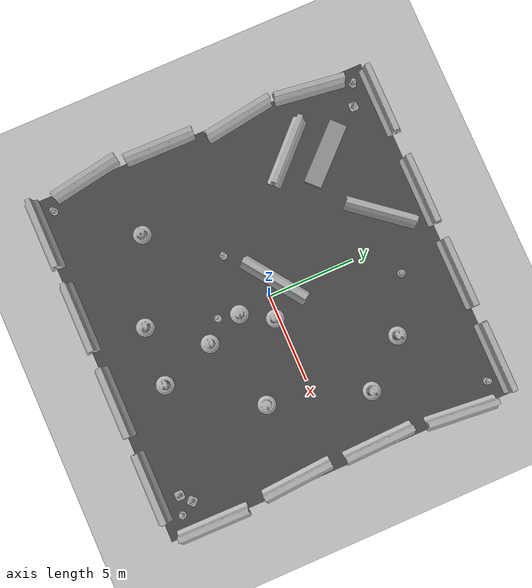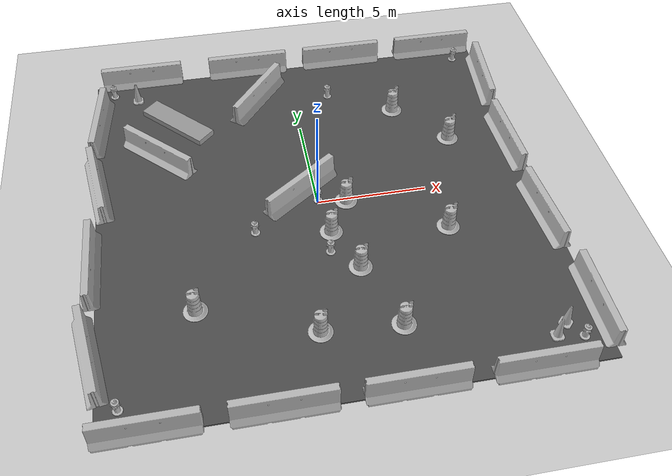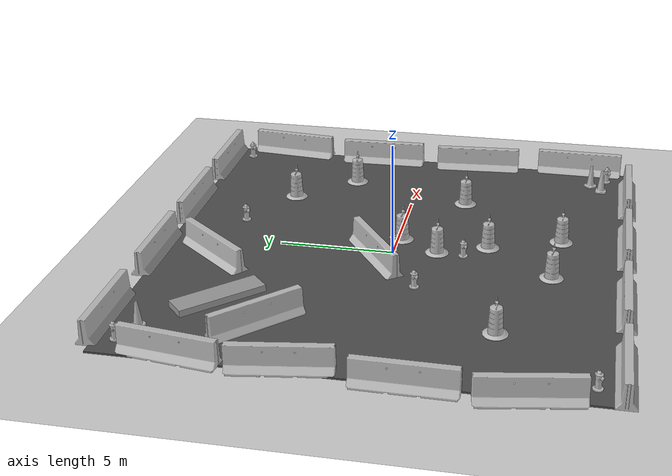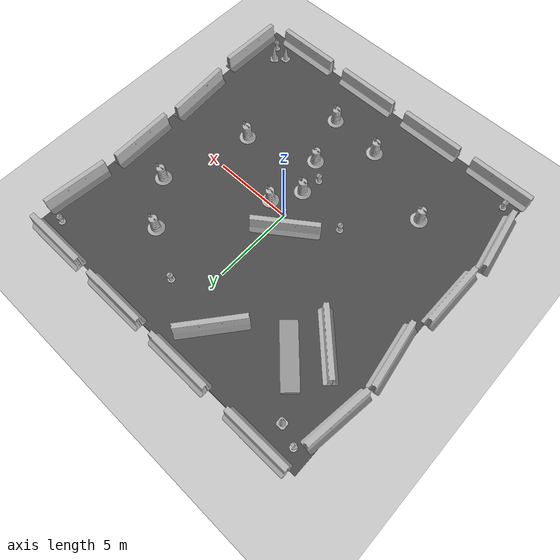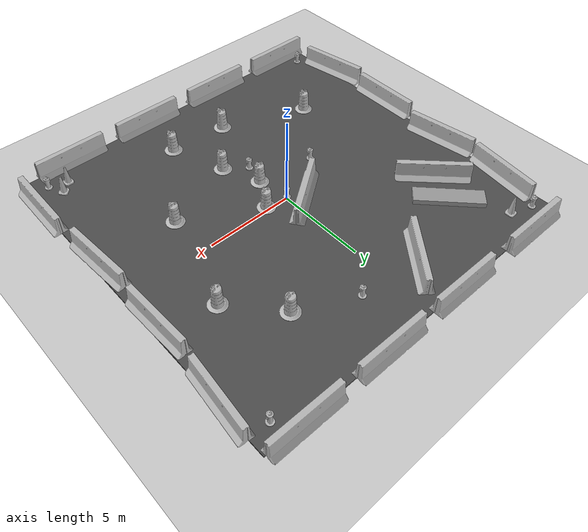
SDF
<sdf version="1.7">
 <world name="default">
  <light name="sun" type="directional">
   <pose>0 0 10 0 -0 0</pose>
   <diffuse>0.8 0.8 0.8 1</diffuse>
   <specular>0.2 0.2 0.2 1</specular>
   <attenuation>
    <range>1000</range>
    <constant>0.9</constant>
    <linear>0.01</linear>
    <quadratic>0.001</quadratic>
   </attenuation>
   <direction>-0.5 0.1 -0.9</direction>
   <spot><inner_angle>0</inner_angle><outer_angle>0</outer_angle><falloff>0</falloff></spot>
  </light>
  <model name="ground_plane">
   <static>1</static>
   <link name="link">
    <collision name="collision">
     <geometry><plane><normal>0 0 1</normal><size>100 100</size></plane></geometry>
     <surface><friction><ode><mu>100</mu><mu2>50</mu2></ode></friction></surface>
    </collision>
    <visual name="visual">
     <cast_shadows>0</cast_shadows>
     <geometry><plane><normal>0 0 1</normal><size>100 100</size></plane></geometry>
     <material>
      <script><uri>file://media/materials/scripts/gazebo.material</uri><name>Gazebo/Grey</name></script>
     </material>
    </visual>
    <velocity_decay><linear>0</linear><angular>0</angular></velocity_decay>
   </link>
  </model>
  <physics type="ode">
   <max_step_size>0.01</max_step_size>
   <real_time_factor>1</real_time_factor>
   <real_time_update_rate>100</real_time_update_rate>
  </physics>
  <scene><ambient>0.4 0.4 0.4 1</ambient><background>0.7 0.7 0.7 1</background><shadows>1</shadows></scene>
  <model name="jersey_barrier">
   <static>1</static>
   <link name="link">
    <visual name="visual">
     <geometry><mesh><uri>model://jersey_barrier/meshes/jersey_barrier.dae</uri></mesh></geometry>
    </visual>
    <collision name="upright">
     <pose>0 0 0.5715 0 -0 0</pose>
     <geometry><box><size>4.06542 0.3063 1.143</size></box></geometry>
    </collision>
    <collision name="base">
     <pose>0 0 0.032258 0 -0 0</pose>
     <geometry><box><size>4.06542 0.8107 0.064516</size></box></geometry>
    </collision>
    <collision name="base2">
     <pose>0 0 0.1 0 -0 0</pose>
     <geometry><box><size>4.06542 0.65 0.1</size></box></geometry>
    </collision>
    <collision name="base3">
     <pose>0 0 0.2 0 -0 0</pose>
     <geometry><box><size>4.06542 0.5 0.1</size></box></geometry>
    </collision>
    <collision name="left-angle">
     <pose>0 -0.224 0.2401 0.9 -0 0</pose>
     <geometry><box><size>4.06542 0.5 0.064516</size></box></geometry>
    </collision>
    <collision name="right-angle">
     <pose>0 0.224 0.2401 -0.9 0 0</pose>
     <geometry><box><size>4.06542 0.5 0.064516</size></box></geometry>
    </collision>
    <velocity_decay><linear>0</linear><angular>0</angular></velocity_decay>
   </link>
   <pose>-8 -10 0 0 -0 0</pose>
  </model>
  <model name="jersey_barrier_0">
   <static>1</static>
   <link name="link">
    <visual name="visual">
     <geometry><mesh><uri>model://jersey_barrier/meshes/jersey_barrier.dae</uri></mesh></geometry>
    </visual>
    <collision name="upright">
     <pose>0 0 0.5715 0 -0 0</pose>
     <geometry><box><size>4.06542 0.3063 1.143</size></box></geometry>
    </collision>
    <collision name="base">
     <pose>0 0 0.032258 0 -0 0</pose>
     <geometry><box><size>4.06542 0.8107 0.064516</size></box></geometry>
    </collision>
    <collision name="base2">
     <pose>0 0 0.1 0 -0 0</pose>
     <geometry><box><size>4.06542 0.65 0.1</size></box></geometry>
    </collision>
    <collision name="base3">
     <pose>0 0 0.2 0 -0 0</pose>
     <geometry><box><size>4.06542 0.5 0.1</size></box></geometry>
    </collision>
    <collision name="left-angle">
     <pose>0 -0.224 0.2401 0.9 -0 0</pose>
     <geometry><box><size>4.06542 0.5 0.064516</size></box></geometry>
    </collision>
    <collision name="right-angle">
     <pose>0 0.224 0.2401 -0.9 0 0</pose>
     <geometry><box><size>4.06542 0.5 0.064516</size></box></geometry>
    </collision>
    <velocity_decay><linear>0</linear><angular>0</angular></velocity_decay>
   </link>
   <pose>-3 -10 0 0 -0 0</pose>
  </model>
  <model name="jersey_barrier_1">
   <static>1</static>
   <link name="link">
    <visual name="visual">
     <geometry><mesh><uri>model://jersey_barrier/meshes/jersey_barrier.dae</uri></mesh></geometry>
    </visual>
    <collision name="upright">
     <pose>0 0 0.5715 0 -0 0</pose>
     <geometry><box><size>4.06542 0.3063 1.143</size></box></geometry>
    </collision>
    <collision name="base">
     <pose>0 0 0.032258 0 -0 0</pose>
     <geometry><box><size>4.06542 0.8107 0.064516</size></box></geometry>
    </collision>
    <collision name="base2">
     <pose>0 0 0.1 0 -0 0</pose>
     <geometry><box><size>4.06542 0.65 0.1</size></box></geometry>
    </collision>
    <collision name="base3">
     <pose>0 0 0.2 0 -0 0</pose>
     <geometry><box><size>4.06542 0.5 0.1</size></box></geometry>
    </collision>
    <collision name="left-angle">
     <pose>0 -0.224 0.2401 0.9 -0 0</pose>
     <geometry><box><size>4.06542 0.5 0.064516</size></box></geometry>
    </collision>
    <collision name="right-angle">
     <pose>0 0.224 0.2401 -0.9 0 0</pose>
     <geometry><box><size>4.06542 0.5 0.064516</size></box></geometry>
    </collision>
    <velocity_decay><linear>0</linear><angular>0</angular></velocity_decay>
   </link>
   <pose>2 -10 0 0 -0 0</pose>
  </model>
  <model name="jersey_barrier_2">
   <static>1</static>
   <link name="link">
    <visual name="visual">
     <geometry><mesh><uri>model://jersey_barrier/meshes/jersey_barrier.dae</uri></mesh></geometry>
    </visual>
    <collision name="upright">
     <pose>0 0 0.5715 0 -0 0</pose>
     <geometry><box><size>4.06542 0.3063 1.143</size></box></geometry>
    </collision>
    <collision name="base">
     <pose>0 0 0.032258 0 -0 0</pose>
     <geometry><box><size>4.06542 0.8107 0.064516</size></box></geometry>
    </collision>
    <collision name="base2">
     <pose>0 0 0.1 0 -0 0</pose>
     <geometry><box><size>4.06542 0.65 0.1</size></box></geometry>
    </collision>
    <collision name="base3">
     <pose>0 0 0.2 0 -0 0</pose>
     <geometry><box><size>4.06542 0.5 0.1</size></box></geometry>
    </collision>
    <collision name="left-angle">
     <pose>0 -0.224 0.2401 0.9 -0 0</pose>
     <geometry><box><size>4.06542 0.5 0.064516</size></box></geometry>
    </collision>
    <collision name="right-angle">
     <pose>0 0.224 0.2401 -0.9 0 0</pose>
     <geometry><box><size>4.06542 0.5 0.064516</size></box></geometry>
    </collision>
    <velocity_decay><linear>0</linear><angular>0</angular></velocity_decay>
   </link>
   <pose>7 -10 0 0 -0 0</pose>
  </model>
  <model name="jersey_barrier_3">
   <static>1</static>
   <link name="link">
    <visual name="visual">
     <geometry><mesh><uri>model://jersey_barrier/meshes/jersey_barrier.dae</uri></mesh></geometry>
    </visual>
    <collision name="upright">
     <pose>0 0 0.5715 0 -0 0</pose>
     <geometry><box><size>4.06542 0.3063 1.143</size></box></geometry>
    </collision>
    <collision name="base">
     <pose>0 0 0.032258 0 -0 0</pose>
     <geometry><box><size>4.06542 0.8107 0.064516</size></box></geometry>
    </collision>
    <collision name="base2">
     <pose>0 0 0.1 0 -0 0</pose>
     <geometry><box><size>4.06542 0.65 0.1</size></box></geometry>
    </collision>
    <collision name="base3">
     <pose>0 0 0.2 0 -0 0</pose>
     <geometry><box><size>4.06542 0.5 0.1</size></box></geometry>
    </collision>
    <collision name="left-angle">
     <pose>0 -0.224 0.2401 0.9 -0 0</pose>
     <geometry><box><size>4.06542 0.5 0.064516</size></box></geometry>
    </collision>
    <collision name="right-angle">
     <pose>0 0.224 0.2401 -0.9 0 0</pose>
     <geometry><box><size>4.06542 0.5 0.064516</size></box></geometry>
    </collision>
    <velocity_decay><linear>0</linear><angular>0</angular></velocity_decay>
   </link>
   <pose>-7.50675 10 0 0 -0 0</pose>
  </model>
  <model name="jersey_barrier_4">
   <static>1</static>
   <link name="link">
    <visual name="visual">
     <geometry><mesh><uri>model://jersey_barrier/meshes/jersey_barrier.dae</uri></mesh></geometry>
    </visual>
    <collision name="upright">
     <pose>0 0 0.5715 0 -0 0</pose>
     <geometry><box><size>4.06542 0.3063 1.143</size></box></geometry>
    </collision>
    <collision name="base">
     <pose>0 0 0.032258 0 -0 0</pose>
     <geometry><box><size>4.06542 0.8107 0.064516</size></box></geometry>
    </collision>
    <collision name="base2">
     <pose>0 0 0.1 0 -0 0</pose>
     <geometry><box><size>4.06542 0.65 0.1</size></box></geometry>
    </collision>
    <collision name="base3">
     <pose>0 0 0.2 0 -0 0</pose>
     <geometry><box><size>4.06542 0.5 0.1</size></box></geometry>
    </collision>
    <collision name="left-angle">
     <pose>0 -0.224 0.2401 0.9 -0 0</pose>
     <geometry><box><size>4.06542 0.5 0.064516</size></box></geometry>
    </collision>
    <collision name="right-angle">
     <pose>0 0.224 0.2401 -0.9 0 0</pose>
     <geometry><box><size>4.06542 0.5 0.064516</size></box></geometry>
    </collision>
    <velocity_decay><linear>0</linear><angular>0</angular></velocity_decay>
   </link>
   <pose>-2 10 0 0 -0 0</pose>
  </model>
  <model name="jersey_barrier_5">
   <static>1</static>
   <link name="link">
    <visual name="visual">
     <geometry><mesh><uri>model://jersey_barrier/meshes/jersey_barrier.dae</uri></mesh></geometry>
    </visual>
    <collision name="upright">
     <pose>0 0 0.5715 0 -0 0</pose>
     <geometry><box><size>4.06542 0.3063 1.143</size></box></geometry>
    </collision>
    <collision name="base">
     <pose>0 0 0.032258 0 -0 0</pose>
     <geometry><box><size>4.06542 0.8107 0.064516</size></box></geometry>
    </collision>
    <collision name="base2">
     <pose>0 0 0.1 0 -0 0</pose>
     <geometry><box><size>4.06542 0.65 0.1</size></box></geometry>
    </collision>
    <collision name="base3">
     <pose>0 0 0.2 0 -0 0</pose>
     <geometry><box><size>4.06542 0.5 0.1</size></box></geometry>
    </collision>
    <collision name="left-angle">
     <pose>0 -0.224 0.2401 0.9 -0 0</pose>
     <geometry><box><size>4.06542 0.5 0.064516</size></box></geometry>
    </collision>
    <collision name="right-angle">
     <pose>0 0.224 0.2401 -0.9 0 0</pose>
     <geometry><box><size>4.06542 0.5 0.064516</size></box></geometry>
    </collision>
    <velocity_decay><linear>0</linear><angular>0</angular></velocity_decay>
   </link>
   <pose>3 10 0 0 -0 0</pose>
  </model>
  <model name="jersey_barrier_6">
   <static>1</static>
   <link name="link">
    <visual name="visual">
     <geometry><mesh><uri>model://jersey_barrier/meshes/jersey_barrier.dae</uri></mesh></geometry>
    </visual>
    <collision name="upright">
     <pose>0 0 0.5715 0 -0 0</pose>
     <geometry><box><size>4.06542 0.3063 1.143</size></box></geometry>
    </collision>
    <collision name="base">
     <pose>0 0 0.032258 0 -0 0</pose>
     <geometry><box><size>4.06542 0.8107 0.064516</size></box></geometry>
    </collision>
    <collision name="base2">
     <pose>0 0 0.1 0 -0 0</pose>
     <geometry><box><size>4.06542 0.65 0.1</size></box></geometry>
    </collision>
    <collision name="base3">
     <pose>0 0 0.2 0 -0 0</pose>
     <geometry><box><size>4.06542 0.5 0.1</size></box></geometry>
    </collision>
    <collision name="left-angle">
     <pose>0 -0.224 0.2401 0.9 -0 0</pose>
     <geometry><box><size>4.06542 0.5 0.064516</size></box></geometry>
    </collision>
    <collision name="right-angle">
     <pose>0 0.224 0.2401 -0.9 0 0</pose>
     <geometry><box><size>4.06542 0.5 0.064516</size></box></geometry>
    </collision>
    <velocity_decay><linear>0</linear><angular>0</angular></velocity_decay>
   </link>
   <pose>8 10 0 0 -0 0</pose>
  </model>
  <model name="jersey_barrier_7">
   <static>1</static>
   <link name="link">
    <visual name="visual">
     <geometry><mesh><uri>model://jersey_barrier/meshes/jersey_barrier.dae</uri></mesh></geometry>
    </visual>
    <collision name="upright">
     <pose>0 0 0.5715 0 -0 0</pose>
     <geometry><box><size>4.06542 0.3063 1.143</size></box></geometry>
    </collision>
    <collision name="base">
     <pose>0 0 0.032258 0 -0 0</pose>
     <geometry><box><size>4.06542 0.8107 0.064516</size></box></geometry>
    </collision>
    <collision name="base2">
     <pose>0 0 0.1 0 -0 0</pose>
     <geometry><box><size>4.06542 0.65 0.1</size></box></geometry>
    </collision>
    <collision name="base3">
     <pose>0 0 0.2 0 -0 0</pose>
     <geometry><box><size>4.06542 0.5 0.1</size></box></geometry>
    </collision>
    <collision name="left-angle">
     <pose>0 -0.224 0.2401 0.9 -0 0</pose>
     <geometry><box><size>4.06542 0.5 0.064516</size></box></geometry>
    </collision>
    <collision name="right-angle">
     <pose>0 0.224 0.2401 -0.9 0 0</pose>
     <geometry><box><size>4.06542 0.5 0.064516</size></box></geometry>
    </collision>
    <velocity_decay><linear>0</linear><angular>0</angular></velocity_decay>
   </link>
   <pose>9.74902 -2.57759 0 0 -0 1.64</pose>
  </model>
  <model name="jersey_barrier_8">
   <static>1</static>
   <link name="link">
    <visual name="visual">
     <geometry><mesh><uri>model://jersey_barrier/meshes/jersey_barrier.dae</uri></mesh></geometry>
    </visual>
    <collision name="upright">
     <pose>0 0 0.5715 0 -0 0</pose>
     <geometry><box><size>4.06542 0.3063 1.143</size></box></geometry>
    </collision>
    <collision name="base">
     <pose>0 0 0.032258 0 -0 0</pose>
     <geometry><box><size>4.06542 0.8107 0.064516</size></box></geometry>
    </collision>
    <collision name="base2">
     <pose>0 0 0.1 0 -0 0</pose>
     <geometry><box><size>4.06542 0.65 0.1</size></box></geometry>
    </collision>
    <collision name="base3">
     <pose>0 0 0.2 0 -0 0</pose>
     <geometry><box><size>4.06542 0.5 0.1</size></box></geometry>
    </collision>
    <collision name="left-angle">
     <pose>0 -0.224 0.2401 0.9 -0 0</pose>
     <geometry><box><size>4.06542 0.5 0.064516</size></box></geometry>
    </collision>
    <collision name="right-angle">
     <pose>0 0.224 0.2401 -0.9 0 0</pose>
     <geometry><box><size>4.06542 0.5 0.064516</size></box></geometry>
    </collision>
    <velocity_decay><linear>0</linear><angular>0</angular></velocity_decay>
   </link>
   <pose>9.70141 2.24369 0 0 -0 1.6</pose>
  </model>
  <model name="jersey_barrier_9">
   <static>1</static>
   <link name="link">
    <visual name="visual">
     <geometry><mesh><uri>model://jersey_barrier/meshes/jersey_barrier.dae</uri></mesh></geometry>
    </visual>
    <collision name="upright">
     <pose>0 0 0.5715 0 -0 0</pose>
     <geometry><box><size>4.06542 0.3063 1.143</size></box></geometry>
    </collision>
    <collision name="base">
     <pose>0 0 0.032258 0 -0 0</pose>
     <geometry><box><size>4.06542 0.8107 0.064516</size></box></geometry>
    </collision>
    <collision name="base2">
     <pose>0 0 0.1 0 -0 0</pose>
     <geometry><box><size>4.06542 0.65 0.1</size></box></geometry>
    </collision>
    <collision name="base3">
     <pose>0 0 0.2 0 -0 0</pose>
     <geometry><box><size>4.06542 0.5 0.1</size></box></geometry>
    </collision>
    <collision name="left-angle">
     <pose>0 -0.224 0.2401 0.9 -0 0</pose>
     <geometry><box><size>4.06542 0.5 0.064516</size></box></geometry>
    </collision>
    <collision name="right-angle">
     <pose>0 0.224 0.2401 -0.9 0 0</pose>
     <geometry><box><size>4.06542 0.5 0.064516</size></box></geometry>
    </collision>
    <velocity_decay><linear>0</linear><angular>0</angular></velocity_decay>
   </link>
   <pose>-10.0607 -6.69856 0 0 0 -1.4</pose>
  </model>
  <model name="jersey_barrier_10">
   <static>1</static>
   <link name="link">
    <visual name="visual">
     <geometry><mesh><uri>model://jersey_barrier/meshes/jersey_barrier.dae</uri></mesh></geometry>
    </visual>
    <collision name="upright">
     <pose>0 0 0.5715 0 -0 0</pose>
     <geometry><box><size>4.06542 0.3063 1.143</size></box></geometry>
    </collision>
    <collision name="base">
     <pose>0 0 0.032258 0 -0 0</pose>
     <geometry><box><size>4.06542 0.8107 0.064516</size></box></geometry>
    </collision>
    <collision name="base2">
     <pose>0 0 0.1 0 -0 0</pose>
     <geometry><box><size>4.06542 0.65 0.1</size></box></geometry>
    </collision>
    <collision name="base3">
     <pose>0 0 0.2 0 -0 0</pose>
     <geometry><box><size>4.06542 0.5 0.1</size></box></geometry>
    </collision>
    <collision name="left-angle">
     <pose>0 -0.224 0.2401 0.9 -0 0</pose>
     <geometry><box><size>4.06542 0.5 0.064516</size></box></geometry>
    </collision>
    <collision name="right-angle">
     <pose>0 0.224 0.2401 -0.9 0 0</pose>
     <geometry><box><size>4.06542 0.5 0.064516</size></box></geometry>
    </collision>
    <velocity_decay><linear>0</linear><angular>0</angular></velocity_decay>
   </link>
   <pose>-10.0774 -2.27159 0 0 -0 1.56</pose>
  </model>
  <model name="jersey_barrier_11">
   <static>1</static>
   <link name="link">
    <visual name="visual">
     <geometry><mesh><uri>model://jersey_barrier/meshes/jersey_barrier.dae</uri></mesh></geometry>
    </visual>
    <collision name="upright">
     <pose>0 0 0.5715 0 -0 0</pose>
     <geometry><box><size>4.06542 0.3063 1.143</size></box></geometry>
    </collision>
    <collision name="base">
     <pose>0 0 0.032258 0 -0 0</pose>
     <geometry><box><size>4.06542 0.8107 0.064516</size></box></geometry>
    </collision>
    <collision name="base2">
     <pose>0 0 0.1 0 -0 0</pose>
     <geometry><box><size>4.06542 0.65 0.1</size></box></geometry>
    </collision>
    <collision name="base3">
     <pose>0 0 0.2 0 -0 0</pose>
     <geometry><box><size>4.06542 0.5 0.1</size></box></geometry>
    </collision>
    <collision name="left-angle">
     <pose>0 -0.224 0.2401 0.9 -0 0</pose>
     <geometry><box><size>4.06542 0.5 0.064516</size></box></geometry>
    </collision>
    <collision name="right-angle">
     <pose>0 0.224 0.2401 -0.9 0 0</pose>
     <geometry><box><size>4.06542 0.5 0.064516</size></box></geometry>
    </collision>
    <velocity_decay><linear>0</linear><angular>0</angular></velocity_decay>
   </link>
   <pose>-9.77013 2.34791 0 0 -0 1.72</pose>
  </model>
  <model name="jersey_barrier_12">
   <static>1</static>
   <link name="link">
    <visual name="visual">
     <geometry><mesh><uri>model://jersey_barrier/meshes/jersey_barrier.dae</uri></mesh></geometry>
    </visual>
    <collision name="upright">
     <pose>0 0 0.5715 0 -0 0</pose>
     <geometry><box><size>4.06542 0.3063 1.143</size></box></geometry>
    </collision>
    <collision name="base">
     <pose>0 0 0.032258 0 -0 0</pose>
     <geometry><box><size>4.06542 0.8107 0.064516</size></box></geometry>
    </collision>
    <collision name="base2">
     <pose>0 0 0.1 0 -0 0</pose>
     <geometry><box><size>4.06542 0.65 0.1</size></box></geometry>
    </collision>
    <collision name="base3">
     <pose>0 0 0.2 0 -0 0</pose>
     <geometry><box><size>4.06542 0.5 0.1</size></box></geometry>
    </collision>
    <collision name="left-angle">
     <pose>0 -0.224 0.2401 0.9 -0 0</pose>
     <geometry><box><size>4.06542 0.5 0.064516</size></box></geometry>
    </collision>
    <collision name="right-angle">
     <pose>0 0.224 0.2401 -0.9 0 0</pose>
     <geometry><box><size>4.06542 0.5 0.064516</size></box></geometry>
    </collision>
    <velocity_decay><linear>0</linear><angular>0</angular></velocity_decay>
   </link>
   <pose>10.0879 -7.62159 0 0 -0 1.56</pose>
  </model>
  <model name="jersey_barrier_13">
   <static>1</static>
   <link name="link">
    <visual name="visual">
     <geometry><mesh><uri>model://jersey_barrier/meshes/jersey_barrier.dae</uri></mesh></geometry>
    </visual>
    <collision name="upright">
     <pose>0 0 0.5715 0 -0 0</pose>
     <geometry><box><size>4.06542 0.3063 1.143</size></box></geometry>
    </collision>
    <collision name="base">
     <pose>0 0 0.032258 0 -0 0</pose>
     <geometry><box><size>4.06542 0.8107 0.064516</size></box></geometry>
    </collision>
    <collision name="base2">
     <pose>0 0 0.1 0 -0 0</pose>
     <geometry><box><size>4.06542 0.65 0.1</size></box></geometry>
    </collision>
    <collision name="base3">
     <pose>0 0 0.2 0 -0 0</pose>
     <geometry><box><size>4.06542 0.5 0.1</size></box></geometry>
    </collision>
    <collision name="left-angle">
     <pose>0 -0.224 0.2401 0.9 -0 0</pose>
     <geometry><box><size>4.06542 0.5 0.064516</size></box></geometry>
    </collision>
    <collision name="right-angle">
     <pose>0 0.224 0.2401 -0.9 0 0</pose>
     <geometry><box><size>4.06542 0.5 0.064516</size></box></geometry>
    </collision>
    <velocity_decay><linear>0</linear><angular>0</angular></velocity_decay>
   </link>
   <pose>10 7 0 0 -0 1.48</pose>
  </model>
  <model name="jersey_barrier_14">
   <static>1</static>
   <link name="link">
    <visual name="visual">
     <geometry><mesh><uri>model://jersey_barrier/meshes/jersey_barrier.dae</uri></mesh></geometry>
    </visual>
    <collision name="upright">
     <pose>0 0 0.5715 0 -0 0</pose>
     <geometry><box><size>4.06542 0.3063 1.143</size></box></geometry>
    </collision>
    <collision name="base">
     <pose>0 0 0.032258 0 -0 0</pose>
     <geometry><box><size>4.06542 0.8107 0.064516</size></box></geometry>
    </collision>
    <collision name="base2">
     <pose>0 0 0.1 0 -0 0</pose>
     <geometry><box><size>4.06542 0.65 0.1</size></box></geometry>
    </collision>
    <collision name="base3">
     <pose>0 0 0.2 0 -0 0</pose>
     <geometry><box><size>4.06542 0.5 0.1</size></box></geometry>
    </collision>
    <collision name="left-angle">
     <pose>0 -0.224 0.2401 0.9 -0 0</pose>
     <geometry><box><size>4.06542 0.5 0.064516</size></box></geometry>
    </collision>
    <collision name="right-angle">
     <pose>0 0.224 0.2401 -0.9 0 0</pose>
     <geometry><box><size>4.06542 0.5 0.064516</size></box></geometry>
    </collision>
    <velocity_decay><linear>0</linear><angular>0</angular></velocity_decay>
   </link>
   <pose>-9.70256 6.62049 0 0 -0 1.44</pose>
  </model>
  <model name="fire_hydrant">
   <static>1</static>
   <link name="link">
    <collision name="collision">
     <geometry><mesh><uri>model://fire_hydrant/meshes/fire_hydrant.dae</uri></mesh></geometry>
    </collision>
    <visual name="visual">
     <geometry><mesh><uri>model://fire_hydrant/meshes/fire_hydrant.dae</uri></mesh></geometry>
    </visual>
    <velocity_decay><linear>0</linear><angular>0</angular></velocity_decay>
   </link>
   <pose>0.01701 -3.0684 0 0 -0 0</pose>
  </model>
  <model name="fire_hydrant_0">
   <static>1</static>
   <link name="link">
    <collision name="collision">
     <geometry><mesh><uri>model://fire_hydrant/meshes/fire_hydrant.dae</uri></mesh></geometry>
    </collision>
    <visual name="visual">
     <geometry><mesh><uri>model://fire_hydrant/meshes/fire_hydrant.dae</uri></mesh></geometry>
    </visual>
    <velocity_decay><linear>0</linear><angular>0</angular></velocity_decay>
   </link>
   <pose>1.76688 7.1352 0 0 -0 0</pose>
  </model>
  <model name="fire_hydrant_1">
   <static>1</static>
   <link name="link">
    <collision name="collision">
     <geometry><mesh><uri>model://fire_hydrant/meshes/fire_hydrant.dae</uri></mesh></geometry>
    </collision>
    <visual name="visual">
     <geometry><mesh><uri>model://fire_hydrant/meshes/fire_hydrant.dae</uri></mesh></geometry>
    </visual>
    <velocity_decay><linear>0</linear><angular>0</angular></velocity_decay>
   </link>
   <pose>-3.01583 -1.43416 0 0 -0 0</pose>
  </model>
  <model name="jersey_barrier_15">
   <static>1</static>
   <link name="link">
    <visual name="visual">
     <geometry><mesh><uri>model://jersey_barrier/meshes/jersey_barrier.dae</uri></mesh></geometry>
    </visual>
    <collision name="upright">
     <pose>0 0 0.5715 0 -0 0</pose>
     <geometry><box><size>4.06542 0.3063 1.143</size></box></geometry>
    </collision>
    <collision name="base">
     <pose>0 0 0.032258 0 -0 0</pose>
     <geometry><box><size>4.06542 0.8107 0.064516</size></box></geometry>
    </collision>
    <collision name="base2">
     <pose>0 0 0.1 0 -0 0</pose>
     <geometry><box><size>4.06542 0.65 0.1</size></box></geometry>
    </collision>
    <collision name="base3">
     <pose>0 0 0.2 0 -0 0</pose>
     <geometry><box><size>4.06542 0.5 0.1</size></box></geometry>
    </collision>
    <collision name="left-angle">
     <pose>0 -0.224 0.2401 0.9 -0 0</pose>
     <geometry><box><size>4.06542 0.5 0.064516</size></box></geometry>
    </collision>
    <collision name="right-angle">
     <pose>0 0.224 0.2401 -0.9 0 0</pose>
     <geometry><box><size>4.06542 0.5 0.064516</size></box></geometry>
    </collision>
    <velocity_decay><linear>0</linear><angular>0</angular></velocity_decay>
   </link>
   <pose>-1.79413 7.48745 0 0 -0 0.891596</pose>
  </model>
  <model name="Construction Cone">
   <link name="link">
    <collision name="collision">
     <geometry>
      <mesh><scale>10 10 10</scale><uri>model://construction_cone/meshes/construction_cone.dae</uri></mesh>
     </geometry>
    </collision>
    <visual name="visual">
     <geometry>
      <mesh><scale>10 10 10</scale><uri>model://construction_cone/meshes/construction_cone.dae</uri></mesh>
     </geometry>
    </visual>
    <velocity_decay><linear>0</linear><angular>0</angular></velocity_decay>
    <inertial>
     <inertia><ixx>1</ixx><ixy>0</ixy><ixz>0</ixz><iyy>1</iyy><iyz>0</iyz><izz>1</izz></inertia>
     <mass>1</mass>
    </inertial>
   </link>
   <pose>7.98363 -8.75621 0.049102 3e-06 -1e-05 1.1e-05</pose>
   <static>0</static>
  </model>
  <model name="Construction Barrel">
   <link name="link">
    <inertial>
     <pose>0 0 0.4 0 -0 0</pose>
     <mass>500</mass>
     <inertia><ixx>51.2096</ixx><iyy>51.2096</iyy><izz>25</izz><ixy>0</ixy><ixz>0</ixz><iyz>0</iyz></inertia>
    </inertial>
    <collision name="collision">
     <geometry><mesh><uri>model://construction_barrel/meshes/construction_barrel.dae</uri></mesh></geometry>
    </collision>
    <visual name="visual">
     <geometry><mesh><uri>model://construction_barrel/meshes/construction_barrel.dae</uri></mesh></geometry>
    </visual>
    <velocity_decay><linear>0</linear><angular>0</angular></velocity_decay>
   </link>
   <pose>0.263171 -1.89903 0.049882 0.000475 -7e-06 -0.0002</pose>
   <static>0</static>
  </model>
  <model name="Construction Cone_0">
   <link name="link">
    <collision name="collision">
     <geometry>
      <mesh><scale>10 10 10</scale><uri>model://construction_cone/meshes/construction_cone.dae</uri></mesh>
     </geometry>
    </collision>
    <visual name="visual">
     <geometry>
      <mesh><scale>10 10 10</scale><uri>model://construction_cone/meshes/construction_cone.dae</uri></mesh>
     </geometry>
    </visual>
    <velocity_decay><linear>0</linear><angular>0</angular></velocity_decay>
    <inertial>
     <inertia><ixx>1</ixx><ixy>0</ixy><ixz>0</ixz><iyy>1</iyy><iyz>0</iyz><izz>1</izz></inertia>
     <mass>1</mass>
    </inertial>
   </link>
   <pose>8.53266 -8.24627 0.049102 3e-06 -1e-05 2.34444</pose>
   <static>0</static>
  </model>
  <model name="Construction Barrel_0">
   <link name="link">
    <inertial>
     <pose>0 0 0.4 0 -0 0</pose>
     <mass>500</mass>
     <inertia><ixx>51.2096</ixx><iyy>51.2096</iyy><izz>25</izz><ixy>0</ixy><ixz>0</ixz><iyz>0</iyz></inertia>
    </inertial>
    <collision name="collision">
     <geometry><mesh><uri>model://construction_barrel/meshes/construction_barrel.dae</uri></mesh></geometry>
    </collision>
    <visual name="visual">
     <geometry><mesh><uri>model://construction_barrel/meshes/construction_barrel.dae</uri></mesh></geometry>
    </visual>
    <velocity_decay><linear>0</linear><angular>0</angular></velocity_decay>
   </link>
   <pose>1.11643 -4.0228 0.049905 0.000412 -2.3e-05 -0.000563</pose>
   <static>0</static>
  </model>
  <model name="asphalt_plane">
   <static>1</static>
   <link name="link">
    <collision name="collision"><geometry><box><size>20 20 0.1</size></box></geometry></collision>
    <visual name="visual">
     <cast_shadows>0</cast_shadows>
     <geometry><box><size>20 20 0.1</size></box></geometry>
     <material>
      <script>
       <uri>model://asphalt_plane/materials/scripts</uri>
       <uri>model://asphalt_plane/materials/textures</uri>
       <name>vrc/asphalt</name>
      </script>
     </material>
    </visual>
    <velocity_decay><linear>0</linear><angular>0</angular></velocity_decay>
   </link>
   <pose>0.09124 -0.110709 0 0 -0 0</pose>
  </model>
  <model name="Construction Barrel_1">
   <link name="link">
    <inertial>
     <pose>0 0 0.4 0 -0 0</pose>
     <mass>500</mass>
     <inertia><ixx>51.2096</ixx><iyy>51.2096</iyy><izz>25</izz><ixy>0</ixy><ixz>0</ixz><iyz>0</iyz></inertia>
    </inertial>
    <collision name="collision">
     <geometry><mesh><uri>model://construction_barrel/meshes/construction_barrel.dae</uri></mesh></geometry>
    </collision>
    <visual name="visual">
     <geometry><mesh><uri>model://construction_barrel/meshes/construction_barrel.dae</uri></mesh></geometry>
    </visual>
    <velocity_decay><linear>0</linear><angular>0</angular></velocity_decay>
   </link>
   <pose>5.39389 -2.49584 0.049876 -0.000127 -0.000472 -0.009243</pose>
   <static>0</static>
  </model>
  <model name="Construction Barrel_2">
   <link name="link">
    <inertial>
     <pose>0 0 0.4 0 -0 0</pose>
     <mass>500</mass>
     <inertia><ixx>51.2096</ixx><iyy>51.2096</iyy><izz>25</izz><ixy>0</ixy><ixz>0</ixz><iyz>0</iyz></inertia>
    </inertial>
    <collision name="collision">
     <geometry><mesh><uri>model://construction_barrel/meshes/construction_barrel.dae</uri></mesh></geometry>
    </collision>
    <visual name="visual">
     <geometry><mesh><uri>model://construction_barrel/meshes/construction_barrel.dae</uri></mesh></geometry>
    </visual>
    <velocity_decay><linear>0</linear><angular>0</angular></velocity_decay>
   </link>
   <pose>4.79551 5.56986 0.049879 0.000481 -5e-06 0.06451</pose>
   <static>0</static>
  </model>
  <model name="Construction Barrel_3">
   <link name="link">
    <inertial>
     <pose>0 0 0.4 0 -0 0</pose>
     <mass>500</mass>
     <inertia><ixx>51.2096</ixx><iyy>51.2096</iyy><izz>25</izz><ixy>0</ixy><ixz>0</ixz><iyz>0</iyz></inertia>
    </inertial>
    <collision name="collision">
     <geometry><mesh><uri>model://construction_barrel/meshes/construction_barrel.dae</uri></mesh></geometry>
    </collision>
    <visual name="visual">
     <geometry><mesh><uri>model://construction_barrel/meshes/construction_barrel.dae</uri></mesh></geometry>
    </visual>
    <velocity_decay><linear>0</linear><angular>0</angular></velocity_decay>
   </link>
   <pose>-1.1198 -6.91979 0.04988 0.00048 -5e-06 -0.121086</pose>
   <static>0</static>
  </model>
  <model name="Construction Barrel_4">
   <link name="link">
    <inertial>
     <pose>0 0 0.4 0 -0 0</pose>
     <mass>500</mass>
     <inertia><ixx>51.2096</ixx><iyy>51.2096</iyy><izz>25</izz><ixy>0</ixy><ixz>0</ixz><iyz>0</iyz></inertia>
    </inertial>
    <collision name="collision">
     <geometry><mesh><uri>model://construction_barrel/meshes/construction_barrel.dae</uri></mesh></geometry>
    </collision>
    <visual name="visual">
     <geometry><mesh><uri>model://construction_barrel/meshes/construction_barrel.dae</uri></mesh></geometry>
    </visual>
    <velocity_decay><linear>0</linear><angular>0</angular></velocity_decay>
   </link>
   <pose>1.26271 -0.193627 0.049901 -9.3e-05 -0.000409 -0.049318</pose>
   <static>0</static>
  </model>
  <model name="Construction Barrel_5">
   <link name="link">
    <inertial>
     <pose>0 0 0.4 0 -0 0</pose>
     <mass>500</mass>
     <inertia><ixx>51.2096</ixx><iyy>51.2096</iyy><izz>25</izz><ixy>0</ixy><ixz>0</ixz><iyz>0</iyz></inertia>
    </inertial>
    <collision name="collision">
     <geometry><mesh><uri>model://construction_barrel/meshes/construction_barrel.dae</uri></mesh></geometry>
    </collision>
    <visual name="visual">
     <geometry><mesh><uri>model://construction_barrel/meshes/construction_barrel.dae</uri></mesh></geometry>
    </visual>
    <velocity_decay><linear>0</linear><angular>0</angular></velocity_decay>
   </link>
   <pose>6.99366 3.05272 0.049888 1e-06 -0.000441 0.146331</pose>
   <static>0</static>
  </model>
  <model name="Construction Barrel_6">
   <link name="link">
    <inertial>
     <pose>0 0 0.4 0 -0 0</pose>
     <mass>500</mass>
     <inertia><ixx>51.2096</ixx><iyy>51.2096</iyy><izz>25</izz><ixy>0</ixy><ixz>0</ixz><iyz>0</iyz></inertia>
    </inertial>
    <collision name="collision">
     <geometry><mesh><uri>model://construction_barrel/meshes/construction_barrel.dae</uri></mesh></geometry>
    </collision>
    <visual name="visual">
     <geometry><mesh><uri>model://construction_barrel/meshes/construction_barrel.dae</uri></mesh></geometry>
    </visual>
    <velocity_decay><linear>0</linear><angular>0</angular></velocity_decay>
   </link>
   <pose>-5.90187 -5.06785 0.049911 -0.000175 -0.000353 0.034869</pose>
   <static>0</static>
  </model>
  <model name="Construction Barrel_7">
   <link name="link">
    <inertial>
     <pose>0 0 0.4 0 -0 0</pose>
     <mass>500</mass>
     <inertia><ixx>51.2096</ixx><iyy>51.2096</iyy><izz>25</izz><ixy>0</ixy><ixz>0</ixz><iyz>0</iyz></inertia>
    </inertial>
    <collision name="collision">
     <geometry><mesh><uri>model://construction_barrel/meshes/construction_barrel.dae</uri></mesh></geometry>
    </collision>
    <visual name="visual">
     <geometry><mesh><uri>model://construction_barrel/meshes/construction_barrel.dae</uri></mesh></geometry>
    </visual>
    <velocity_decay><linear>0</linear><angular>0</angular></velocity_decay>
   </link>
   <pose>2.20492 -7.15413 0.049918 -0.000162 -0.000336 0.003014</pose>
   <static>0</static>
  </model>
  <model name="Construction Cone_1">
   <link name="link">
    <collision name="collision">
     <geometry>
      <mesh><scale>10 10 10</scale><uri>model://construction_cone/meshes/construction_cone.dae</uri></mesh>
     </geometry>
    </collision>
    <visual name="visual">
     <geometry>
      <mesh><scale>10 10 10</scale><uri>model://construction_cone/meshes/construction_cone.dae</uri></mesh>
     </geometry>
    </visual>
    <velocity_decay><linear>0</linear><angular>0</angular></velocity_decay>
    <inertial>
     <inertia><ixx>1</ixx><ixy>0</ixy><ixz>0</ixz><iyy>1</iyy><iyz>0</iyz><izz>1</izz></inertia>
     <mass>1</mass>
    </inertial>
   </link>
   <pose>-7.83315 8.54064 0.049102 3e-06 -1e-05 0.020166</pose>
   <static>0</static>
  </model>
  <gravity>0 0 -9.8</gravity>
  <magnetic_field>6e-06 2.3e-05 -4.2e-05</magnetic_field>
  <atmosphere type="adiabatic"/>
  <spherical_coordinates>
   <surface_model>EARTH_WGS84</surface_model>
   <latitude_deg>0</latitude_deg>
   <longitude_deg>0</longitude_deg>
   <elevation>0</elevation>
   <heading_deg>0</heading_deg>
  </spherical_coordinates>
  <model name="jersey_barrier_15_clone">
   <static>1</static>
   <link name="link">
    <visual name="visual">
     <geometry><mesh><uri>model://jersey_barrier/meshes/jersey_barrier.dae</uri></mesh></geometry>
    </visual>
    <collision name="upright">
     <pose>0 0 0.5715 0 -0 0</pose>
     <geometry><box><size>4.06542 0.3063 1.143</size></box></geometry>
    </collision>
    <collision name="base">
     <pose>0 0 0.032258 0 -0 0</pose>
     <geometry><box><size>4.06542 0.8107 0.064516</size></box></geometry>
    </collision>
    <collision name="base2">
     <pose>0 0 0.1 0 -0 0</pose>
     <geometry><box><size>4.06542 0.65 0.1</size></box></geometry>
    </collision>
    <collision name="base3">
     <pose>0 0 0.2 0 -0 0</pose>
     <geometry><box><size>4.06542 0.5 0.1</size></box></geometry>
    </collision>
    <collision name="left-angle">
     <pose>0 -0.224 0.2401 0.9 -0 0</pose>
     <geometry><box><size>4.06542 0.5 0.064516</size></box></geometry>
    </collision>
    <collision name="right-angle">
     <pose>0 0.224 0.2401 -0.9 0 0</pose>
     <geometry><box><size>4.06542 0.5 0.064516</size></box></geometry>
    </collision>
    <velocity_decay><linear>0</linear><angular>0</angular></velocity_decay>
   </link>
   <pose>-6.93443 4.09077 0 0 -0 2.36</pose>
  </model>
  <model name="jersey_barrier_15_clone_0">
   <static>1</static>
   <link name="link">
    <visual name="visual">
     <geometry><mesh><uri>model://jersey_barrier/meshes/jersey_barrier.dae</uri></mesh></geometry>
    </visual>
    <collision name="upright">
     <pose>0 0 0.5715 0 -0 0</pose>
     <geometry><box><size>4.06542 0.3063 1.143</size></box></geometry>
    </collision>
    <collision name="base">
     <pose>0 0 0.032258 0 -0 0</pose>
     <geometry><box><size>4.06542 0.8107 0.064516</size></box></geometry>
    </collision>
    <collision name="base2">
     <pose>0 0 0.1 0 -0 0</pose>
     <geometry><box><size>4.06542 0.65 0.1</size></box></geometry>
    </collision>
    <collision name="base3">
     <pose>0 0 0.2 0 -0 0</pose>
     <geometry><box><size>4.06542 0.5 0.1</size></box></geometry>
    </collision>
    <collision name="left-angle">
     <pose>0 -0.224 0.2401 0.9 -0 0</pose>
     <geometry><box><size>4.06542 0.5 0.064516</size></box></geometry>
    </collision>
    <collision name="right-angle">
     <pose>0 0.224 0.2401 -0.9 0 0</pose>
     <geometry><box><size>4.06542 0.5 0.064516</size></box></geometry>
    </collision>
    <velocity_decay><linear>0</linear><angular>0</angular></velocity_decay>
   </link>
   <pose>-0.684469 0.626157 0 0 -0 0.621257</pose>
  </model>
  <model name="fire_hydrant_clone">
   <static>1</static>
   <link name="link">
    <collision name="collision">
     <geometry><mesh><uri>model://fire_hydrant/meshes/fire_hydrant.dae</uri></mesh></geometry>
    </collision>
    <visual name="visual">
     <geometry><mesh><uri>model://fire_hydrant/meshes/fire_hydrant.dae</uri></mesh></geometry>
    </visual>
    <velocity_decay><linear>0</linear><angular>0</angular></velocity_decay>
   </link>
  </model>
  <plugin name="gazebo_occupancy_map" filename="libgazebo_2Dmap_plugin.so">
   <map_resolution>0.05</map_resolution>
   <map_height>0.3</map_height>
   <map_size_x>30</map_size_x>
   <map_size_y>30</map_size_y>
   <init_robot_x>13</init_robot_x>
   <init_robot_y>13</init_robot_y>
  </plugin>
  <model name="fire_hydrant_0_clone">
   <static>1</static>
   <link name="link">
    <collision name="collision">
     <geometry><mesh><uri>model://fire_hydrant/meshes/fire_hydrant.dae</uri></mesh></geometry>
    </collision>
    <visual name="visual">
     <geometry><mesh><uri>model://fire_hydrant/meshes/fire_hydrant.dae</uri></mesh></geometry>
    </visual>
    <velocity_decay><linear>0</linear><angular>0</angular></velocity_decay>
   </link>
   <pose>9 9 0 0 -0 0</pose>
  </model>
  <model name="fire_hydrant_0_clone_0">
   <static>1</static>
   <link name="link">
    <collision name="collision">
     <geometry><mesh><uri>model://fire_hydrant/meshes/fire_hydrant.dae</uri></mesh></geometry>
    </collision>
    <visual name="visual">
     <geometry><mesh><uri>model://fire_hydrant/meshes/fire_hydrant.dae</uri></mesh></geometry>
    </visual>
    <velocity_decay><linear>0</linear><angular>0</angular></velocity_decay>
   </link>
   <pose>9 -9 0 0 -0 0</pose>
  </model>
  <model name="fire_hydrant_0_clone_1">
   <static>1</static>
   <link name="link">
    <collision name="collision">
     <geometry><mesh><uri>model://fire_hydrant/meshes/fire_hydrant.dae</uri></mesh></geometry>
    </collision>
    <visual name="visual">
     <geometry><mesh><uri>model://fire_hydrant/meshes/fire_hydrant.dae</uri></mesh></geometry>
    </visual>
    <velocity_decay><linear>0</linear><angular>0</angular></velocity_decay>
   </link>
   <pose>-9 -9 0 0 -0 0</pose>
  </model>
  <model name="fire_hydrant_0_clone_2">
   <static>1</static>
   <link name="link">
    <collision name="collision">
     <geometry><mesh><uri>model://fire_hydrant/meshes/fire_hydrant.dae</uri></mesh></geometry>
    </collision>
    <visual name="visual">
     <geometry><mesh><uri>model://fire_hydrant/meshes/fire_hydrant.dae</uri></mesh></geometry>
    </visual>
    <velocity_decay><linear>0</linear><angular>0</angular></velocity_decay>
   </link>
   <pose>-9 9 0 0 -0 0</pose>
  </model>
  <model name="unit_box">
   <pose>-5.90795 5.94106 0.575614 8e-06 7e-06 -0.805555</pose>
   <link name="link">
    <inertial>
     <mass>1</mass>
     <inertia>
      <ixx>0.166667</ixx>
      <ixy>0</ixy>
      <ixz>0</ixz>
      <iyy>0.166667</iyy>
      <iyz>0</iyz>
      <izz>0.166667</izz>
     </inertia>
    </inertial>
    <collision name="collision"><geometry><box><size>3.74284 1 0.283924</size></box></geometry></collision>
    <visual name="visual">
     <geometry><box><size>3.74284 1 0.283924</size></box></geometry>
     <material>
      <script><name>Gazebo/Grey</name><uri>file://media/materials/scripts/gazebo.material</uri></script>
     </material>
    </visual>
   </link>
  </model>
 </world>
</sdf>
